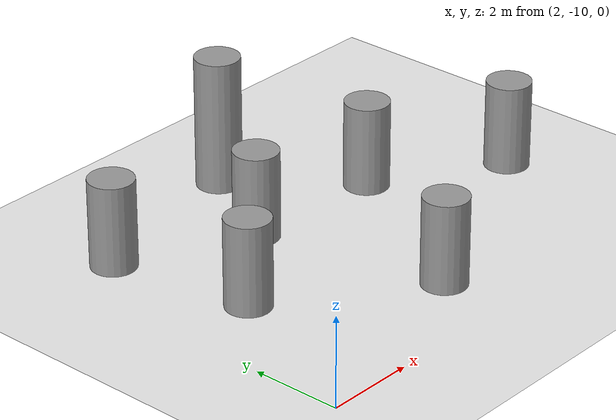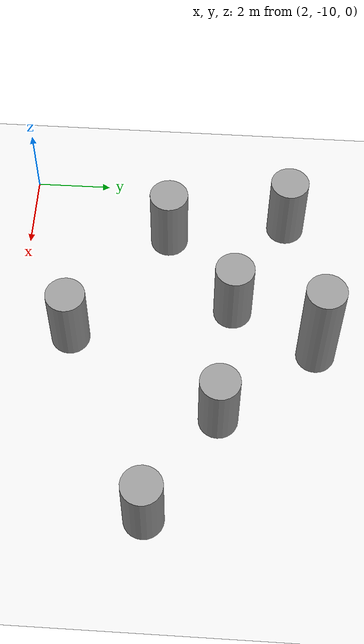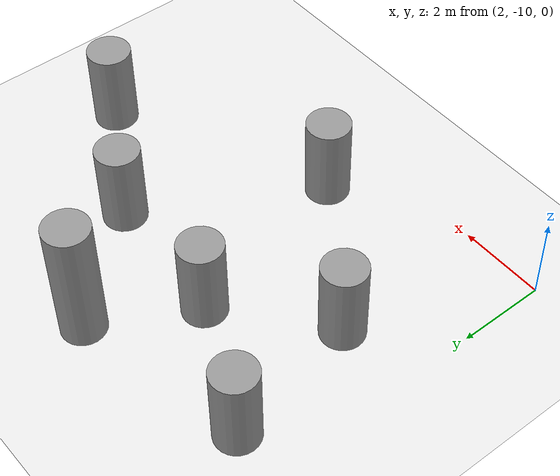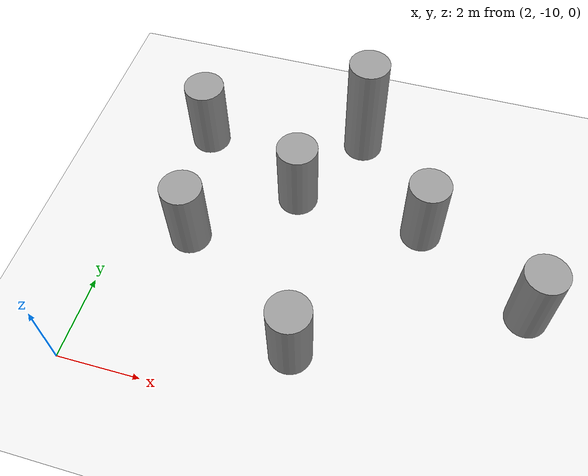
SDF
<sdf version="1.6">
 <world name="default">
  <model name="ground_plane">
   <static>1</static>
   <link name="link">
    <collision name="collision">
     <geometry><plane><normal>0 0 1</normal><size>100 100</size></plane></geometry>
     <surface><friction><ode><mu>100</mu><mu2>50</mu2></ode></friction></surface>
    </collision>
    <visual name="visual">
     <geometry><plane><normal>0 0 1</normal><size>100 100</size></plane></geometry>
     <material>
      <script><uri>file://media/materials/scripts/gazebo.material</uri><name>Gazebo/White</name></script>
     </material>
    </visual>
   </link>
  </model>
  <model name="unit_cylinder_5_clone_7">
   <link name="link">
    <inertial>
     <mass>1</mass>
     <inertia><ixx>0.145833</ixx><ixy>0</ixy><ixz>0</ixz><iyy>0.145833</iyy><iyz>0</iyz><izz>0.125</izz></inertia>
    </inertial>
    <visual name="visual">
     <geometry><cylinder><radius>0.5</radius><length>2</length></cylinder></geometry>
     <material>
      <script><name>Gazebo/Grey</name><uri>file://media/materials/scripts/gazebo.material</uri></script>
      <ambient>0.3 0.3 0.3 1</ambient>
      <diffuse>0.7 0.7 0.7 1</diffuse>
      <specular>0.01 0.01 0.01 1</specular>
      <emissive>0 0 0 1</emissive>
      <shader type="vertex"><normal_map>__default__</normal_map></shader>
     </material>
    </visual>
    <collision name="collision">
     <geometry><cylinder><radius>0.5</radius><length>2</length></cylinder></geometry>
     <surface>
      <friction>
       <ode><mu>1</mu><mu2>1</mu2><fdir1>0 0 0</fdir1><slip1>0</slip1><slip2>0</slip2></ode>
       <torsional>
        <coefficient>1</coefficient>
        <patch_radius>0</patch_radius>
        <surface_radius>0</surface_radius>
        <use_patch_radius>1</use_patch_radius>
        <ode><slip>0</slip></ode>
       </torsional>
      </friction>
      <bounce><restitution_coefficient>0</restitution_coefficient><threshold>1e+06</threshold></bounce>
      <contact>
       <collide_without_contact>0</collide_without_contact>
       <collide_without_contact_bitmask>1</collide_without_contact_bitmask>
       <collide_bitmask>1</collide_bitmask>
       <ode>
        <soft_cfm>0</soft_cfm>
        <soft_erp>0.2</soft_erp>
        <kp>1e+13</kp>
        <kd>1</kd>
        <max_vel>0.01</max_vel>
        <min_depth>0</min_depth>
       </ode>
       <bullet>
        <split_impulse>1</split_impulse>
        <split_impulse_penetration_threshold>-0.01</split_impulse_penetration_threshold>
        <soft_cfm>0</soft_cfm>
        <soft_erp>0.2</soft_erp>
        <kp>1e+13</kp>
        <kd>1</kd>
       </bullet>
      </contact>
     </surface>
    </collision>
   </link>
   <static>0</static>
   <pose>5.97232 -4.3731 0.999884 2.2e-05 -1e-06 0.002884</pose>
  </model>
  <model name="unit_cylinder_0_0">
   <link name="link">
    <inertial>
     <mass>1</mass>
     <inertia><ixx>0.145833</ixx><ixy>0</ixy><ixz>0</ixz><iyy>0.145833</iyy><iyz>0</iyz><izz>0.125</izz></inertia>
    </inertial>
    <visual name="visual">
     <geometry><cylinder><radius>0.5</radius><length>3</length></cylinder></geometry>
     <material>
      <script><name>Gazebo/Grey</name><uri>file://media/materials/scripts/gazebo.material</uri></script>
      <ambient>0.3 0.3 0.3 1</ambient>
      <diffuse>0.7 0.7 0.7 1</diffuse>
      <specular>0.01 0.01 0.01 1</specular>
      <emissive>0 0 0 1</emissive>
      <shader type="vertex"><normal_map>__default__</normal_map></shader>
     </material>
    </visual>
    <collision name="collision">
     <geometry><cylinder><radius>0.5</radius><length>3</length></cylinder></geometry>
     <surface>
      <friction>
       <ode><mu>1</mu><mu2>1</mu2><fdir1>0 0 0</fdir1><slip1>0</slip1><slip2>0</slip2></ode>
       <torsional>
        <coefficient>1</coefficient>
        <patch_radius>0</patch_radius>
        <surface_radius>0</surface_radius>
        <use_patch_radius>1</use_patch_radius>
        <ode><slip>0</slip></ode>
       </torsional>
      </friction>
      <bounce><restitution_coefficient>0</restitution_coefficient><threshold>1e+06</threshold></bounce>
      <contact>
       <collide_without_contact>0</collide_without_contact>
       <collide_without_contact_bitmask>1</collide_without_contact_bitmask>
       <collide_bitmask>1</collide_bitmask>
       <ode>
        <soft_cfm>0</soft_cfm>
        <soft_erp>0.2</soft_erp>
        <kp>1e+13</kp>
        <kd>1</kd>
        <max_vel>0.01</max_vel>
        <min_depth>0</min_depth>
       </ode>
       <bullet>
        <split_impulse>1</split_impulse>
        <split_impulse_penetration_threshold>-0.01</split_impulse_penetration_threshold>
        <soft_cfm>0</soft_cfm>
        <soft_erp>0.2</soft_erp>
        <kp>1e+13</kp>
        <kd>1</kd>
       </bullet>
      </contact>
     </surface>
    </collision>
   </link>
   <static>0</static>
   <pose>7.16627 -2.19502 1.49988 4.7e-05 -4e-06 -0.002805</pose>
  </model>
  <model name="unit_cylinder_5_clone_0_clone">
   <link name="link">
    <inertial>
     <mass>1</mass>
     <inertia><ixx>0.145833</ixx><ixy>0</ixy><ixz>0</ixz><iyy>0.145833</iyy><iyz>0</iyz><izz>0.125</izz></inertia>
    </inertial>
    <visual name="visual">
     <geometry><cylinder><radius>0.5</radius><length>2</length></cylinder></geometry>
     <material>
      <script><name>Gazebo/Grey</name><uri>file://media/materials/scripts/gazebo.material</uri></script>
      <ambient>0.3 0.3 0.3 1</ambient>
      <diffuse>0.7 0.7 0.7 1</diffuse>
      <specular>0.01 0.01 0.01 1</specular>
      <emissive>0 0 0 1</emissive>
      <shader type="vertex"><normal_map>__default__</normal_map></shader>
     </material>
    </visual>
    <collision name="collision">
     <geometry><cylinder><radius>0.5</radius><length>2</length></cylinder></geometry>
     <surface>
      <friction>
       <ode><mu>1</mu><mu2>1</mu2><fdir1>0 0 0</fdir1><slip1>0</slip1><slip2>0</slip2></ode>
       <torsional>
        <coefficient>1</coefficient>
        <patch_radius>0</patch_radius>
        <surface_radius>0</surface_radius>
        <use_patch_radius>1</use_patch_radius>
        <ode><slip>0</slip></ode>
       </torsional>
      </friction>
      <bounce><restitution_coefficient>0</restitution_coefficient><threshold>1e+06</threshold></bounce>
      <contact>
       <collide_without_contact>0</collide_without_contact>
       <collide_without_contact_bitmask>1</collide_without_contact_bitmask>
       <collide_bitmask>1</collide_bitmask>
       <ode>
        <soft_cfm>0</soft_cfm>
        <soft_erp>0.2</soft_erp>
        <kp>1e+13</kp>
        <kd>1</kd>
        <max_vel>0.01</max_vel>
        <min_depth>0</min_depth>
       </ode>
       <bullet>
        <split_impulse>1</split_impulse>
        <split_impulse_penetration_threshold>-0.01</split_impulse_penetration_threshold>
        <soft_cfm>0</soft_cfm>
        <soft_erp>0.2</soft_erp>
        <kp>1e+13</kp>
        <kd>1</kd>
       </bullet>
      </contact>
     </surface>
    </collision>
   </link>
   <static>0</static>
   <pose>3.1338 -3.03548 0.999884 2.2e-05 -2e-06 0.003543</pose>
  </model>
  <model name="unit_cylinder_5_clone_0_clone_2">
   <link name="link">
    <inertial>
     <mass>1</mass>
     <inertia><ixx>0.145833</ixx><ixy>0</ixy><ixz>0</ixz><iyy>0.145833</iyy><iyz>0</iyz><izz>0.125</izz></inertia>
    </inertial>
    <visual name="visual">
     <geometry><cylinder><radius>0.5</radius><length>2</length></cylinder></geometry>
     <material>
      <script><name>Gazebo/Grey</name><uri>file://media/materials/scripts/gazebo.material</uri></script>
      <ambient>0.3 0.3 0.3 1</ambient>
      <diffuse>0.7 0.7 0.7 1</diffuse>
      <specular>0.01 0.01 0.01 1</specular>
      <emissive>0 0 0 1</emissive>
      <shader type="vertex"><normal_map>__default__</normal_map></shader>
     </material>
    </visual>
    <collision name="collision">
     <geometry><cylinder><radius>0.5</radius><length>2</length></cylinder></geometry>
     <surface>
      <friction>
       <ode><mu>1</mu><mu2>1</mu2><fdir1>0 0 0</fdir1><slip1>0</slip1><slip2>0</slip2></ode>
       <torsional>
        <coefficient>1</coefficient>
        <patch_radius>0</patch_radius>
        <surface_radius>0</surface_radius>
        <use_patch_radius>1</use_patch_radius>
        <ode><slip>0</slip></ode>
       </torsional>
      </friction>
      <bounce><restitution_coefficient>0</restitution_coefficient><threshold>1e+06</threshold></bounce>
      <contact>
       <collide_without_contact>0</collide_without_contact>
       <collide_without_contact_bitmask>1</collide_without_contact_bitmask>
       <collide_bitmask>1</collide_bitmask>
       <ode>
        <soft_cfm>0</soft_cfm>
        <soft_erp>0.2</soft_erp>
        <kp>1e+13</kp>
        <kd>1</kd>
        <max_vel>0.01</max_vel>
        <min_depth>0</min_depth>
       </ode>
       <bullet>
        <split_impulse>1</split_impulse>
        <split_impulse_penetration_threshold>-0.01</split_impulse_penetration_threshold>
        <soft_cfm>0</soft_cfm>
        <soft_erp>0.2</soft_erp>
        <kp>1e+13</kp>
        <kd>1</kd>
       </bullet>
      </contact>
     </surface>
    </collision>
   </link>
   <static>0</static>
   <pose>3.74075 -6.1902 0.999884 2.2e-05 -1e-06 0.002509</pose>
  </model>
  <model name="unit_cylinder_5_clone_7_clone_4">
   <link name="link">
    <inertial>
     <mass>1</mass>
     <inertia><ixx>0.145833</ixx><ixy>0</ixy><ixz>0</ixz><iyy>0.145833</iyy><iyz>0</iyz><izz>0.125</izz></inertia>
    </inertial>
    <visual name="visual">
     <geometry><cylinder><radius>0.5</radius><length>2</length></cylinder></geometry>
     <material>
      <script><name>Gazebo/Grey</name><uri>file://media/materials/scripts/gazebo.material</uri></script>
      <ambient>0.3 0.3 0.3 1</ambient>
      <diffuse>0.7 0.7 0.7 1</diffuse>
      <specular>0.01 0.01 0.01 1</specular>
      <emissive>0 0 0 1</emissive>
      <shader type="vertex"><normal_map>__default__</normal_map></shader>
     </material>
    </visual>
    <collision name="collision">
     <geometry><cylinder><radius>0.5</radius><length>2</length></cylinder></geometry>
     <surface>
      <friction>
       <ode><mu>1</mu><mu2>1</mu2><fdir1>0 0 0</fdir1><slip1>0</slip1><slip2>0</slip2></ode>
       <torsional>
        <coefficient>1</coefficient>
        <patch_radius>0</patch_radius>
        <surface_radius>0</surface_radius>
        <use_patch_radius>1</use_patch_radius>
        <ode><slip>0</slip></ode>
       </torsional>
      </friction>
      <bounce><restitution_coefficient>0</restitution_coefficient><threshold>1e+06</threshold></bounce>
      <contact>
       <collide_without_contact>0</collide_without_contact>
       <collide_without_contact_bitmask>1</collide_without_contact_bitmask>
       <collide_bitmask>1</collide_bitmask>
       <ode>
        <soft_cfm>0</soft_cfm>
        <soft_erp>0.2</soft_erp>
        <kp>1e+13</kp>
        <kd>1</kd>
        <max_vel>0.01</max_vel>
        <min_depth>0</min_depth>
       </ode>
       <bullet>
        <split_impulse>1</split_impulse>
        <split_impulse_penetration_threshold>-0.01</split_impulse_penetration_threshold>
        <soft_cfm>0</soft_cfm>
        <soft_erp>0.2</soft_erp>
        <kp>1e+13</kp>
        <kd>1</kd>
       </bullet>
      </contact>
     </surface>
    </collision>
   </link>
   <static>0</static>
   <pose>11.9493 -6.2447 0.999884 2.2e-05 -1e-06 0.00226</pose>
  </model>
  <model name="unit_cylinder_5_clone_7_clone_4_clone">
   <link name="link">
    <inertial>
     <mass>1</mass>
     <inertia><ixx>0.145833</ixx><ixy>0</ixy><ixz>0</ixz><iyy>0.145833</iyy><iyz>0</iyz><izz>0.125</izz></inertia>
    </inertial>
    <visual name="visual">
     <geometry><cylinder><radius>0.5</radius><length>2</length></cylinder></geometry>
     <material>
      <script><name>Gazebo/Grey</name><uri>file://media/materials/scripts/gazebo.material</uri></script>
      <ambient>0.3 0.3 0.3 1</ambient>
      <diffuse>0.7 0.7 0.7 1</diffuse>
      <specular>0.01 0.01 0.01 1</specular>
      <emissive>0 0 0 1</emissive>
      <shader type="vertex"><normal_map>__default__</normal_map></shader>
     </material>
    </visual>
    <collision name="collision">
     <geometry><cylinder><radius>0.5</radius><length>2</length></cylinder></geometry>
     <surface>
      <friction>
       <ode><mu>1</mu><mu2>1</mu2><fdir1>0 0 0</fdir1><slip1>0</slip1><slip2>0</slip2></ode>
       <torsional>
        <coefficient>1</coefficient>
        <patch_radius>0</patch_radius>
        <surface_radius>0</surface_radius>
        <use_patch_radius>1</use_patch_radius>
        <ode><slip>0</slip></ode>
       </torsional>
      </friction>
      <bounce><restitution_coefficient>0</restitution_coefficient><threshold>1e+06</threshold></bounce>
      <contact>
       <collide_without_contact>0</collide_without_contact>
       <collide_without_contact_bitmask>1</collide_without_contact_bitmask>
       <collide_bitmask>1</collide_bitmask>
       <ode>
        <soft_cfm>0</soft_cfm>
        <soft_erp>0.2</soft_erp>
        <kp>1e+13</kp>
        <kd>1</kd>
        <max_vel>0.01</max_vel>
        <min_depth>0</min_depth>
       </ode>
       <bullet>
        <split_impulse>1</split_impulse>
        <split_impulse_penetration_threshold>-0.01</split_impulse_penetration_threshold>
        <soft_cfm>0</soft_cfm>
        <soft_erp>0.2</soft_erp>
        <kp>1e+13</kp>
        <kd>1</kd>
       </bullet>
      </contact>
     </surface>
    </collision>
   </link>
   <static>0</static>
   <pose>7.00013 -8.54116 0.999884 2.2e-05 -1e-06 0.002271</pose>
  </model>
  <model name="unit_cylinder_5_clone_7_clone_4_clone_0">
   <link name="link">
    <inertial>
     <mass>1</mass>
     <inertia><ixx>0.145833</ixx><ixy>0</ixy><ixz>0</ixz><iyy>0.145833</iyy><iyz>0</iyz><izz>0.125</izz></inertia>
    </inertial>
    <visual name="visual">
     <geometry><cylinder><radius>0.5</radius><length>2</length></cylinder></geometry>
     <material>
      <script><name>Gazebo/Grey</name><uri>file://media/materials/scripts/gazebo.material</uri></script>
      <ambient>0.3 0.3 0.3 1</ambient>
      <diffuse>0.7 0.7 0.7 1</diffuse>
      <specular>0.01 0.01 0.01 1</specular>
      <emissive>0 0 0 1</emissive>
      <shader type="vertex"><normal_map>__default__</normal_map></shader>
     </material>
    </visual>
    <collision name="collision">
     <geometry><cylinder><radius>0.5</radius><length>2</length></cylinder></geometry>
     <surface>
      <friction>
       <ode><mu>1</mu><mu2>1</mu2><fdir1>0 0 0</fdir1><slip1>0</slip1><slip2>0</slip2></ode>
       <torsional>
        <coefficient>1</coefficient>
        <patch_radius>0</patch_radius>
        <surface_radius>0</surface_radius>
        <use_patch_radius>1</use_patch_radius>
        <ode><slip>0</slip></ode>
       </torsional>
      </friction>
      <bounce><restitution_coefficient>0</restitution_coefficient><threshold>1e+06</threshold></bounce>
      <contact>
       <collide_without_contact>0</collide_without_contact>
       <collide_without_contact_bitmask>1</collide_without_contact_bitmask>
       <collide_bitmask>1</collide_bitmask>
       <ode>
        <soft_cfm>0</soft_cfm>
        <soft_erp>0.2</soft_erp>
        <kp>1e+13</kp>
        <kd>1</kd>
        <max_vel>0.01</max_vel>
        <min_depth>0</min_depth>
       </ode>
       <bullet>
        <split_impulse>1</split_impulse>
        <split_impulse_penetration_threshold>-0.01</split_impulse_penetration_threshold>
        <soft_cfm>0</soft_cfm>
        <soft_erp>0.2</soft_erp>
        <kp>1e+13</kp>
        <kd>1</kd>
       </bullet>
      </contact>
     </surface>
    </collision>
   </link>
   <static>0</static>
   <pose>9.19754 -4.60471 0.999884 2.2e-05 -1e-06 0.002291</pose>
  </model>
 </world>
</sdf>
